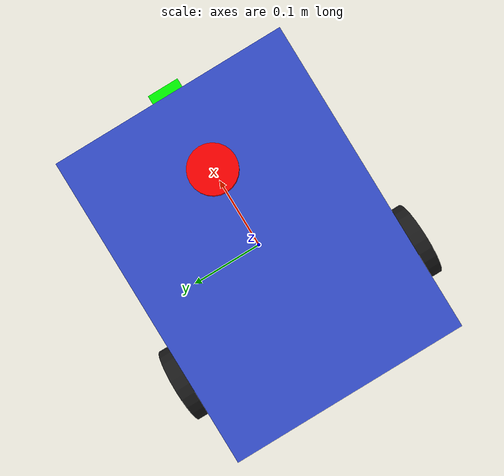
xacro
<?xml version="1.0"?>

<robot xmlns:xacro="http://www.ros.org/wiki/xacro" name="medical_rover">

    <xacro:include filename="properties.xacro" />
    <xacro:include filename="wheels.xacro" />
    <xacro:include filename="chassis.xacro" />
    <xacro:include filename="sensors.xacro" />
    <xacro:include filename="inertial_values.xacro" />
    <xacro:include filename="gazebo.xacro"/>
    <xacro:include filename="ros2_control.xacro"/>

    <link name="base_link"/>

    <xacro:chassis/>

    <xacro:wheel prefix="left" y_pos="${wheel_y}"/>
    <xacro:wheel prefix="right" y_pos="-${wheel_y}"/>

    <xacro:lidar/>

    <xacro:camera/>

    <xacro:caster/>

    <xacro:ros2_control/>

</robot>

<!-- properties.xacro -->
<robot xmlns:xacro="http://www.ros.org/wiki/xacro">

    <!--CHASSIS PROPERTIES-->
    <xacro:property name="body_length" value="0.40" />
    <xacro:property name="body_width" value="0.30" />
    <xacro:property name="body_height" value="0.12" />
    <xacro:property name="body_mass" value="2.5"/>

    <!--WHEEL PROPERTIES-->
    <xacro:property name="wheel_radius" value="0.05" />
    <xacro:property name="wheel_width" value="0.03" />
    <xacro:property name="wheel_mass" value="0.20" />

    <xacro:property name="wheel_x" value="-0.10" />
    <xacro:property name="wheel_y" value="${body_width/2 + wheel_width/2}" />

    <!--LIDAR PROPERTIES-->
    <xacro:property name="lidar_radius" value="0.03" />
    <xacro:property name="lidar_height" value="0.03" />
    <xacro:property name="lidar_mass" value="0.10" />

    <!--CAMERA PROPERTIES-->
    <xacro:property name="camera_length" value="0.04" />
    <xacro:property name="camera_width" value="0.03" />
    <xacro:property name="camera_height" value="0.02" />
    <xacro:property name="camera_mass" value="0.08" />

    <!--CASTER WHEEL PROPERTIES-->
    <xacro:property name="sphere_radius" value="0.025" />
    <xacro:property name="caster_mass" value="0.05" />

</robot>

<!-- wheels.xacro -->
<robot xmlns:xacro="http://www.ros.org/wiki/xacro">

    <xacro:macro name="wheel" params="prefix y_pos">

        <link name="${prefix}_wheel_link">
            <visual>
                <origin xyz="0 0 0" rpy="0 0 0"/>

                <geometry>
                    <cylinder radius="${wheel_radius}" length="${wheel_width}" />
                </geometry>

                <material name="black">
                    <color rgba="0.1 0.1 0.1 1" />
                </material>
            </visual>

            <collision>
                <origin xyz="0 0 0" rpy="0 0 0"/>

                <geometry>
                    <cylinder radius="${wheel_radius}" length="${wheel_width}" />
                </geometry>

            </collision>

            <xacro:cylinder_inertia mass="${wheel_mass}" radius="${wheel_radius}" length="${wheel_width}"/>
        </link>

        <joint name="${prefix}_wheel_joint" type="continuous">
            <parent  link="chassis_link"/>
            <child link="${prefix}_wheel_link"/>
            <origin xyz="${wheel_x} ${y_pos} 0" rpy="-${pi/2} 0 0"/>
            <axis xyz="0 0 1"/>
        </joint>

    </xacro:macro>

</robot>

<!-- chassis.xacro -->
<robot xmlns:xacro="http://www.ros.org/wiki/xacro">

    <xacro:macro name="chassis">
        <link name="chassis_link">
            <visual>
                <origin xyz="0 0 ${body_height/2}" rpy="0 0 0"/>

                <geometry>
                    <box size="${body_length} ${body_width} ${body_height}" />
                </geometry>

                <material name="blue">
                    <color rgba="0.2 0.3 0.8 1" />
                </material>
            </visual>

            <collision>
                <origin xyz="0 0 ${body_height/2}" rpy="0 0 0"/>

                <geometry>
                    <box size="${body_length} ${body_width} ${body_height}" />
                </geometry>
            </collision>

            <xacro:box_inertia mass="${body_mass}" x="${body_length}" y="${body_width}" z="${body_height}"/>
        </link>

        <joint name="base_to_chassis" type="fixed">
            <parent link="base_link"/>
            <child link="chassis_link"/>
            <origin xyz="0 0 ${wheel_radius}" rpy="0 0 0"/>
        </joint>

    </xacro:macro>

    <xacro:macro name="caster">
        <link name="caster_wheel_link">
            <visual>
                <origin xyz="0 0 0" rpy="0 0 0"/>
                <geometry>
                    <sphere radius="${sphere_radius}" />
                </geometry>
                <material name="grey">
                    <color rgba="0.7 0.7 0.7 1" />
                </material>
            </visual>

        <collision>
            <origin xyz="0 0 0" rpy="0 0 0"/>
            <geometry>
                <sphere radius="${sphere_radius}" />
            </geometry>
        </collision>

        <xacro:sphere_inertia mass="${caster_mass}" radius="${sphere_radius}"/>

        </link>

        <joint name="caster_wheel_joint" type="fixed">
            <parent link="chassis_link"/>
            <child link="caster_wheel_link"/>
            <origin xyz="${(body_length/2)-sphere_radius} 0 -${sphere_radius}" rpy="0 0 0"/>
        </joint>

>
    </xacro:macro>

</robot>

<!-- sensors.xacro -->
<robot xmlns:xacro="http://www.ros.org/wiki/xacro">

    <xacro:macro name="lidar">
        <link name="lidar_link">
            <visual>
                <origin xyz = "0 0 0" rpy = "0 0 0"/>
                <geometry>
                    <cylinder radius="${lidar_radius}" length="${lidar_height}" />
                </geometry>
                <material name="red">
                    <color rgba="1 0 0 1" />
                </material>
            </visual>
            <collision>
                <origin xyz = "0 0 0" rpy = "0 0 0"/>
                <geometry>
                    <cylinder radius="${lidar_radius}" length="${lidar_height}" />
                </geometry>
            </collision>

            <xacro:cylinder_inertia mass="${lidar_mass}" radius="${lidar_radius}" length="${lidar_height}"/>

        </link>

        <joint name="lidar_joint" type="fixed">
            <parent link="chassis_link"/>
            <child link="lidar_link"/>
            <origin xyz="${body_length/4} 0 ${body_height} " rpy="0 0 0"/>

        </joint>

    </xacro:macro>

    <xacro:macro name="camera">

        <link name="camera_link">
            <visual>
                <origin xyz="0 0 0" rpy="0 0 0"/>
                <geometry>
                    <box size="${camera_width} ${camera_length} ${camera_height}" />
                </geometry>
                <material name="green">
                    <color rgba="0 1 0 1" />
                </material>
            </visual>
            <collision>
                <origin xyz="0 0 0" rpy="0 0 0"/>
                <geometry>
                    <box size="${camera_width} ${camera_length} ${camera_height}" />
                </geometry>

            </collision>

            <xacro:box_inertia mass="${camera_mass}" x="${camera_width}" y="${camera_length}" z="${camera_height}" />

    </link>

        <joint name="camera_joint" type="fixed">
            <parent link="chassis_link"/>
            <child link="camera_link"/>
            <origin xyz="${body_length/2} 0 ${body_height-camera_width}" rpy="0 0 0"/>

        </joint>

    </xacro:macro>

</robot>

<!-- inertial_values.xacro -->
<robot xmlns:xacro="http://www.ros.org/wiki/xacro">

    <!-- Box Inertia -->
    <xacro:macro name="box_inertia" params="mass x y z">

        <inertial>

            <mass value="${mass}"/>

            <origin xyz="0 0 0" rpy="0 0 0"/>

            <inertia
                ixx="${(mass/12.0)*(y*y + z*z)}"
                ixy="0"
                ixz="0"

                iyy="${(mass/12.0)*(x*x + z*z)}"
                iyz="0"

                izz="${(mass/12.0)*(x*x + y*y)}"/>

        </inertial>

    </xacro:macro>

    <!-- Cylinder Inertia -->
    <xacro:macro name="cylinder_inertia" params="mass radius length">

        <inertial>

            <mass value="${mass}"/>

            <origin xyz="0 0 0" rpy="0 0 0"/>

            <inertia
                ixx="${mass*(3*radius*radius + length*length)/12.0}"
                ixy="0"
                ixz="0"

                iyy="${mass*(3*radius*radius + length*length)/12.0}"
                iyz="0"

                izz="${0.5*mass*radius*radius}"/>

        </inertial>

    </xacro:macro>

    <!-- Sphere Inertia -->
    <xacro:macro name="sphere_inertia" params="mass radius">

        <inertial>

            <mass value="${mass}"/>

            <origin xyz="0 0 0" rpy="0 0 0"/>

            <inertia
                ixx="${0.4*mass*radius*radius}"
                ixy="0"
                ixz="0"

                iyy="${0.4*mass*radius*radius}"
                iyz="0"

                izz="${0.4*mass*radius*radius}"/>

        </inertial>

    </xacro:macro>

</robot>
